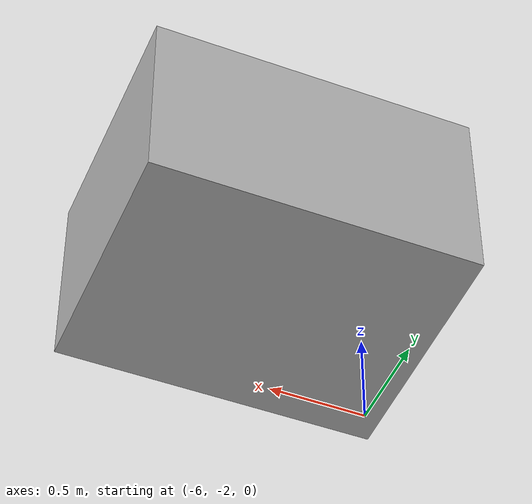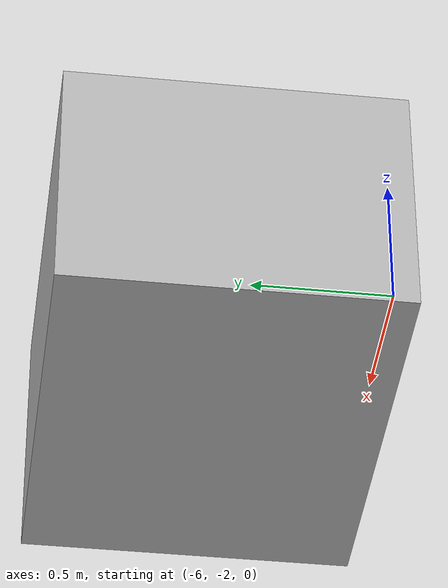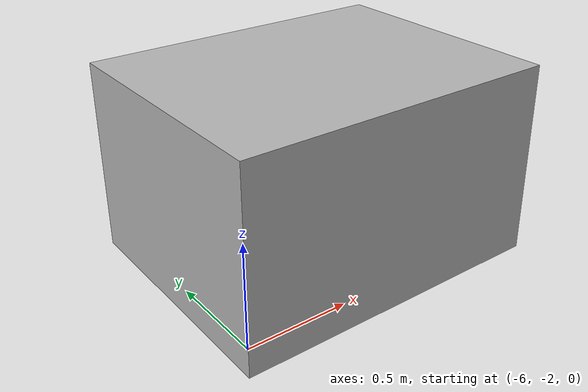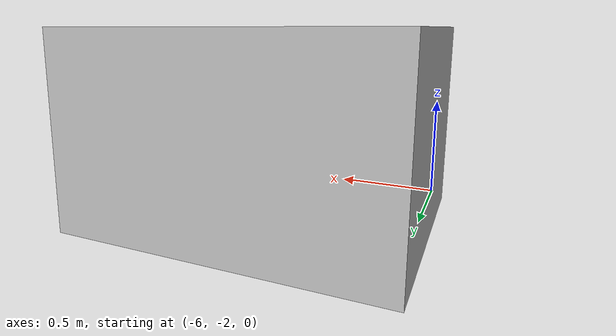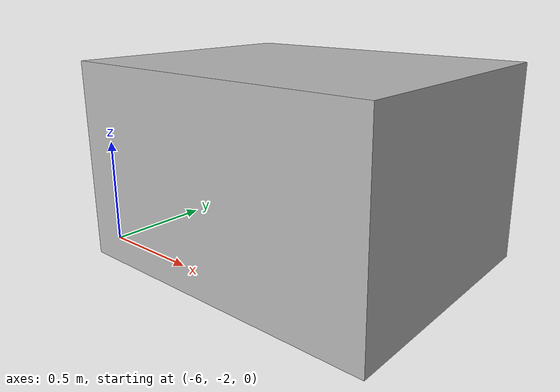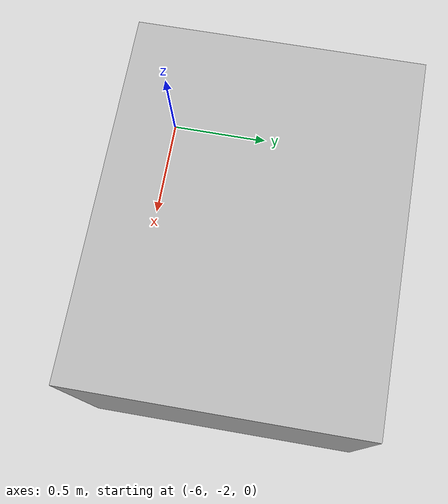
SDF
<sdf version="1.10">
  <model name="kitchen_static">
    <static>true</static>
    <link name="env">
      <visual name="vis">
        <geometry>
          <mesh>
            <uri>meshes_new/kitchen_env.gltf</uri>
            <scale>1 1 1</scale>
          </mesh>
        </geometry>
      </visual>
      <collision name="col">
        <pose>0 0 0 1.5708 0 0</pose>  <!-- Rotate 90° around X-axis -->
        <geometry>
          <mesh>
            <uri>meshes_new/collision/table_box.obj</uri>
            <scale>1 1 1</scale>
          </mesh>
        </geometry>
      </collision>

      <collision name="chair_col">
        <pose>0 0 0 1.5708 0 0</pose>  <!-- Rotate 90° around X-axis -->
        <geometry>
          <mesh>
            <uri>meshes_new/collision/chairs.obj</uri>
            <scale>1 1 1</scale>
          </mesh>
        </geometry>
      </collision>

      <collision name="wall1_col">
        <pose>0 0 0 1.5708 0 0</pose>  <!-- Rotate 90° around X-axis -->
        <geometry>
          <mesh>
            <uri>meshes_new/collision/wall_1.obj</uri>
            <scale>1 1 1</scale>
          </mesh>
        </geometry>
      </collision>

      <collision name="wall2_col">
        <pose>0 0 0 1.5708 0 0</pose>  <!-- Rotate 90° around X-axis -->
        <geometry>
          <mesh>
            <uri>meshes_new/collision/wall_2.obj</uri>
            <scale>1 1 1</scale>
          </mesh>
        </geometry>
      </collision>

      <collision name="wall3_col">
        <pose>0 0 0 1.5708 0 0</pose>  <!-- Rotate 90° around X-axis -->
        <geometry>
          <mesh>
            <uri>meshes_new/collision/wall_3.obj</uri>
            <scale>1 1 1</scale>
          </mesh>
        </geometry>
      </collision>

      <collision name="wall4_col">
        <pose>0 0 0 1.5708 0 0</pose>  <!-- Rotate 90° around X-axis -->
        <geometry>
          <mesh>
            <uri>meshes_new/collision/wall_4.obj</uri>
            <scale>1 1 1</scale>
          </mesh>
        </geometry>
      </collision>

      <collision name="cabinet1_col">
        <pose>0 0 0 1.5708 0 0</pose>  <!-- Rotate 90° around X-axis -->
        <geometry>
          <mesh>
            <uri>meshes_new/collision/cabinet1.obj</uri>
            <scale>1 1 1</scale>
          </mesh>
        </geometry>
      </collision>

      <collision name="cabinet2_col">
        <pose>0 0 0 1.5708 0 0</pose>  <!-- Rotate 90° around X-axis -->
        <geometry>
          <mesh>
            <uri>meshes_new/collision/cabinet2.obj</uri>
            <scale>1 1 1</scale>
          </mesh>
        </geometry>
      </collision>

      <collision name="cabinet3_col">
        <pose>0 0 0 1.5708 0 0</pose>  <!-- Rotate 90° around X-axis -->
        <geometry>
          <mesh>
            <uri>meshes_new/collision/cabinet3.obj</uri>
            <scale>1 1 1</scale>
          </mesh>
        </geometry>
      </collision>

      <collision name="cabinet4_col">
        <pose>0 0 0 1.5708 0 0</pose>  <!-- Rotate 90° around X-axis -->
        <geometry>
          <mesh>
            <uri>meshes_new/collision/cabinet4.obj</uri>
            <scale>1 1 1</scale>
          </mesh>
        </geometry>
      </collision>

      <collision name="frig_col">
        <pose>0 0 0 1.5708 0 0</pose>  <!-- Rotate 90° around X-axis -->
        <geometry>
          <mesh>
            <uri>meshes_new/collision/frig.obj</uri>
            <scale>1 1 1</scale>
          </mesh>
        </geometry>
      </collision>

      <collision name="table1_col">
        <pose>0 0 0 1.5708 0 0</pose>  <!-- Rotate 90° around X-axis -->
        <geometry>
          <mesh>
            <uri>meshes_new/collision/table1.obj</uri>
            <scale>1 1 1</scale>
          </mesh>
        </geometry>
      </collision>

      <collision name="table2_col">
        <pose>0 0 0 1.5708 0 0</pose>  <!-- Rotate 90° around X-axis -->
        <geometry>
          <mesh>
            <uri>meshes_new/collision/table2.obj</uri>
            <scale>1 1 1</scale>
          </mesh>
        </geometry>
      </collision>
    </link>
  </model>
</sdf>
